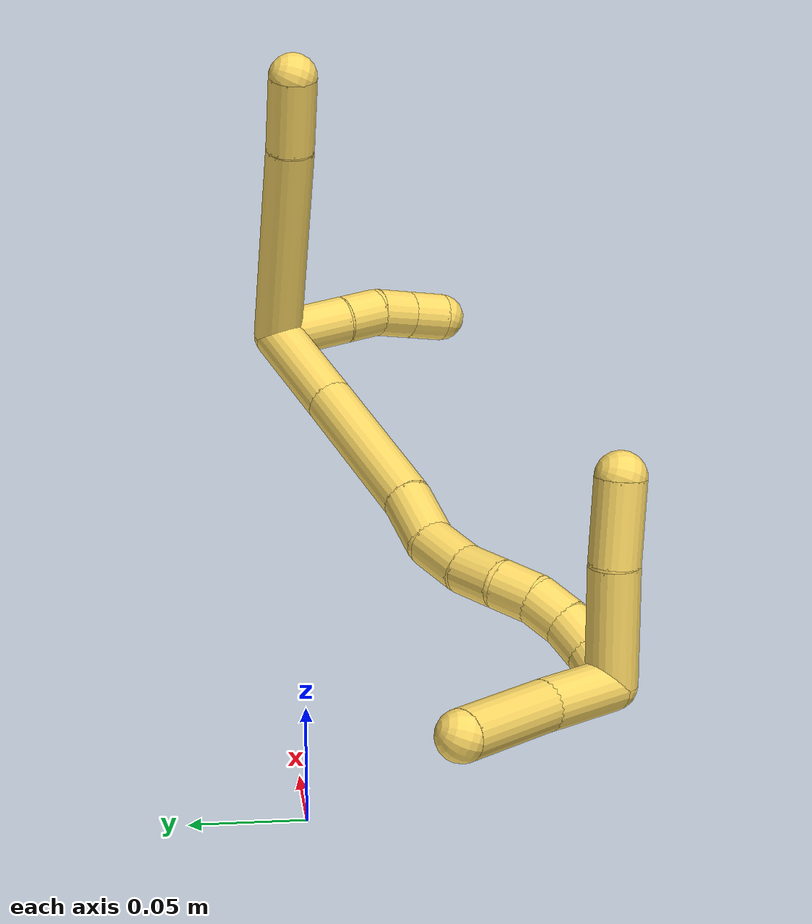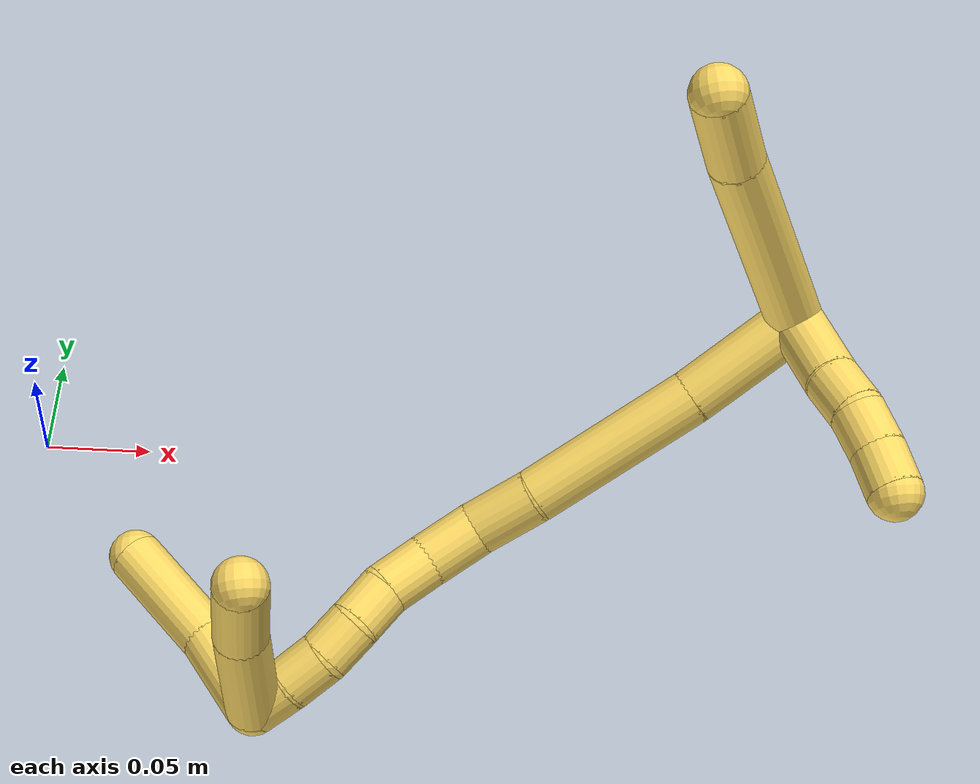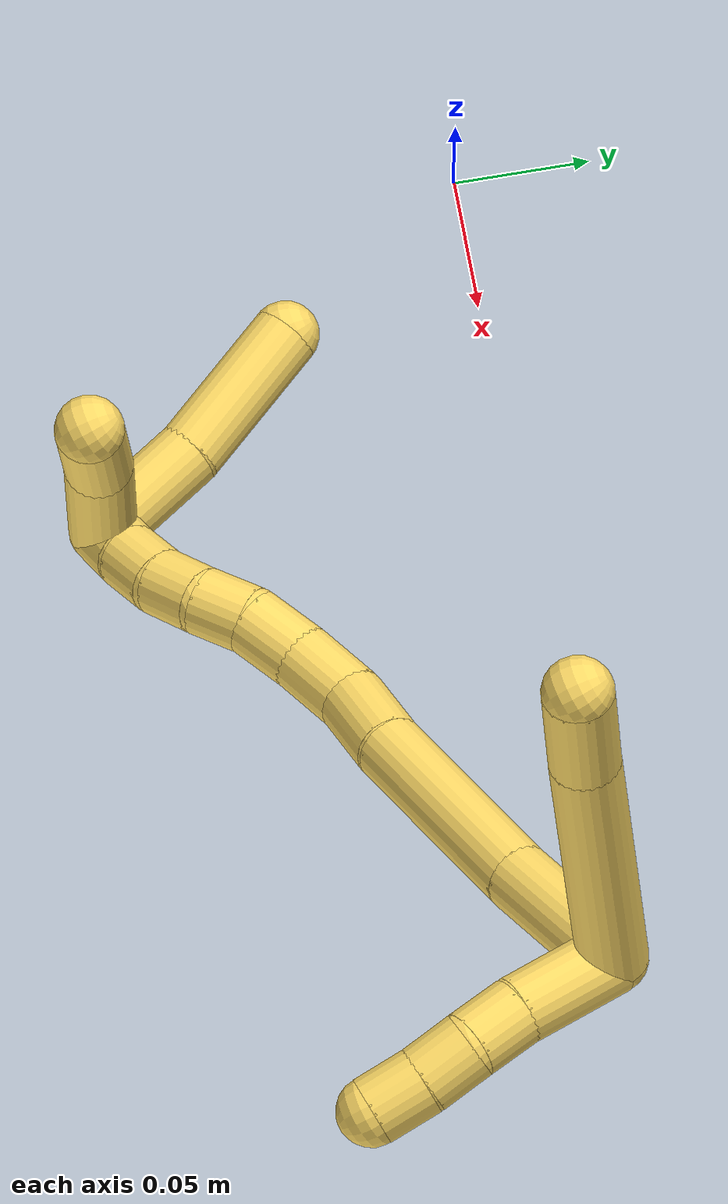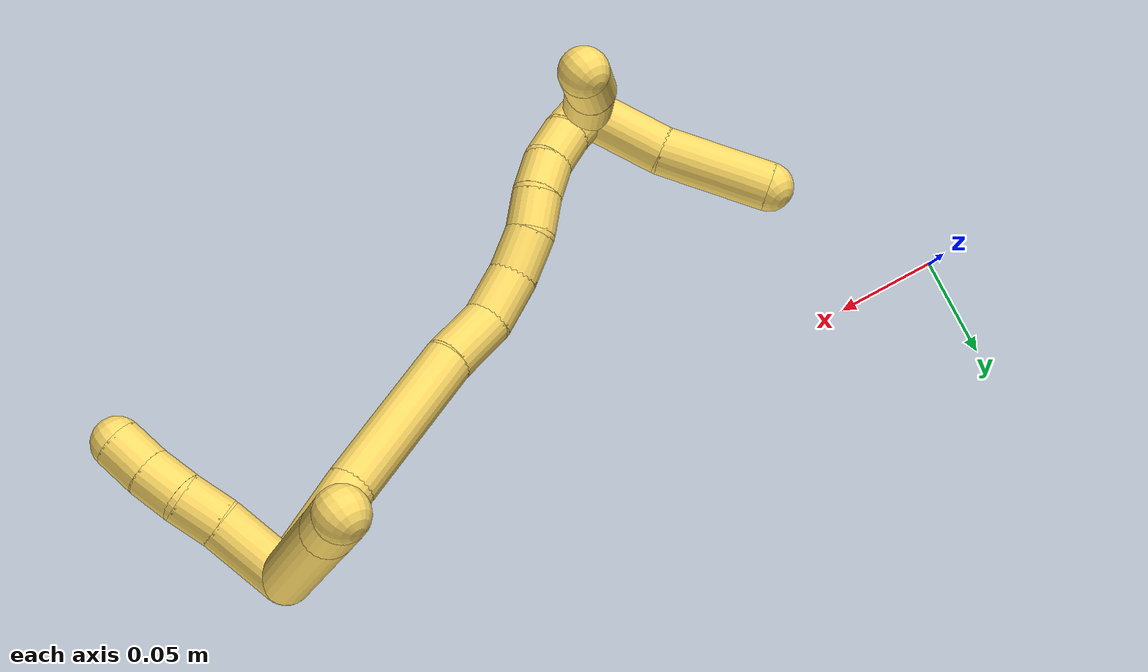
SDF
<sdf version="1.7">
 <world name="default">
  <model name="5">
   <static>0</static>
   <link name="5">
    <collision name="collision-cylinder-e_1_2_8">
     <pose>0.006683 0.05063 -0.02074 -1.95958 0.121542 -0.180861</pose>
     <geometry><cylinder><radius>0.0125</radius><length>0.11024</length></cylinder></geometry>
     <surface>
      <friction><ode><mu>1.16</mu><mu2>1.16</mu2><slip1>0</slip1><slip2>0</slip2></ode></friction>
      <contact><ode><kp>1e+06</kp><kd>1</kd><max_vel>0</max_vel><min_depth>0.001</min_depth></ode></contact>
     </surface>
    </collision>
    <visual name="visual-cylinder-e_1_2_8">
     <pose>0.006683 0.05063 -0.02074 -1.95958 0.121542 -0.180861</pose>
     <geometry><cylinder><radius>0.0125</radius><length>0.11024</length></cylinder></geometry>
     <material><ambient>1 0.858824 0.4 1</ambient></material>
    </visual>
    <collision name="collision-cylinder-e_2_8_6">
     <pose>0.016997 0.119204 -0.04923 -1.97852 0.183709 -0.278437</pose>
     <geometry><cylinder><radius>0.0125</radius><length>0.03976</length></cylinder></geometry>
     <surface>
      <friction><ode><mu>1.16</mu><mu2>1.16</mu2><slip1>0</slip1><slip2>0</slip2></ode></friction>
      <contact><ode><kp>1e+06</kp><kd>1</kd><max_vel>0</max_vel><min_depth>0.001</min_depth></ode></contact>
     </surface>
    </collision>
    <visual name="visual-cylinder-e_2_8_6">
     <pose>0.016997 0.119204 -0.04923 -1.97852 0.183709 -0.278437</pose>
     <geometry><cylinder><radius>0.0125</radius><length>0.03976</length></cylinder></geometry>
     <material><ambient>1 0.858824 0.4 1</ambient></material>
    </visual>
    <collision name="collision-cylinder-e_1_2_9">
     <pose>0.007501 0.006426 0.016707 -0.367195 0.396794 -0.074628</pose>
     <geometry><cylinder><radius>0.0125</radius><length>0.038817</length></cylinder></geometry>
     <surface>
      <friction><ode><mu>1.16</mu><mu2>1.16</mu2><slip1>0</slip1><slip2>0</slip2></ode></friction>
      <contact><ode><kp>1e+06</kp><kd>1</kd><max_vel>0</max_vel><min_depth>0.001</min_depth></ode></contact>
     </surface>
    </collision>
    <visual name="visual-cylinder-e_1_2_9">
     <pose>0.007501 0.006426 0.016707 -0.367195 0.396794 -0.074628</pose>
     <geometry><cylinder><radius>0.0125</radius><length>0.038817</length></cylinder></geometry>
     <material><ambient>1 0.858824 0.4 1</ambient></material>
    </visual>
    <collision name="collision-cylinder-e_2_9_10">
     <pose>0.019818 0.015477 0.042301 -0.287166 0.479401 -0.07064</pose>
     <geometry><cylinder><radius>0.0125</radius><length>0.020887</length></cylinder></geometry>
     <surface>
      <friction><ode><mu>1.16</mu><mu2>1.16</mu2><slip1>0</slip1><slip2>0</slip2></ode></friction>
      <contact><ode><kp>1e+06</kp><kd>1</kd><max_vel>0</max_vel><min_depth>0.001</min_depth></ode></contact>
     </surface>
    </collision>
    <visual name="visual-cylinder-e_2_9_10">
     <pose>0.019818 0.015477 0.042301 -0.287166 0.479401 -0.07064</pose>
     <geometry><cylinder><radius>0.0125</radius><length>0.020887</length></cylinder></geometry>
     <material><ambient>1 0.858824 0.4 1</ambient></material>
    </visual>
    <collision name="collision-cylinder-e_3_10_11">
     <pose>0.027727 0.018749 0.060718 -0.067809 0.313029 -0.010705</pose>
     <geometry><cylinder><radius>0.0125</radius><length>0.02008</length></cylinder></geometry>
     <surface>
      <friction><ode><mu>1.16</mu><mu2>1.16</mu2><slip1>0</slip1><slip2>0</slip2></ode></friction>
      <contact><ode><kp>1e+06</kp><kd>1</kd><max_vel>0</max_vel><min_depth>0.001</min_depth></ode></contact>
     </surface>
    </collision>
    <visual name="visual-cylinder-e_3_10_11">
     <pose>0.027727 0.018749 0.060718 -0.067809 0.313029 -0.010705</pose>
     <geometry><cylinder><radius>0.0125</radius><length>0.02008</length></cylinder></geometry>
     <material><ambient>1 0.858824 0.4 1</ambient></material>
    </visual>
    <collision name="collision-cylinder-e_4_11_5">
     <pose>0.033221 0.020669 0.079984 -0.129978 0.239898 -0.015688</pose>
     <geometry><cylinder><radius>0.0125</radius><length>0.020216</length></cylinder></geometry>
     <surface>
      <friction><ode><mu>1.16</mu><mu2>1.16</mu2><slip1>0</slip1><slip2>0</slip2></ode></friction>
      <contact><ode><kp>1e+06</kp><kd>1</kd><max_vel>0</max_vel><min_depth>0.001</min_depth></ode></contact>
     </surface>
    </collision>
    <visual name="visual-cylinder-e_4_11_5">
     <pose>0.033221 0.020669 0.079984 -0.129978 0.239898 -0.015688</pose>
     <geometry><cylinder><radius>0.0125</radius><length>0.020216</length></cylinder></geometry>
     <material><ambient>1 0.858824 0.4 1</ambient></material>
    </visual>
    <collision name="collision-cylinder-e_1_2_12">
     <pose>-0.025151 0.0032 0.01217 -0.257117 -1.10689 0.159405</pose>
     <geometry><cylinder><radius>0.0125</radius><length>0.056246</length></cylinder></geometry>
     <surface>
      <friction><ode><mu>1.16</mu><mu2>1.16</mu2><slip1>0</slip1><slip2>0</slip2></ode></friction>
      <contact><ode><kp>1e+06</kp><kd>1</kd><max_vel>0</max_vel><min_depth>0.001</min_depth></ode></contact>
     </surface>
    </collision>
    <visual name="visual-cylinder-e_1_2_12">
     <pose>-0.025151 0.0032 0.01217 -0.257117 -1.10689 0.159405</pose>
     <geometry><cylinder><radius>0.0125</radius><length>0.056246</length></cylinder></geometry>
     <material><ambient>1 0.858824 0.4 1</ambient></material>
    </visual>
    <collision name="collision-cylinder-e_2_12_13">
     <pose>-0.08789 0.012635 0.039963 -0.379718 -1.14999 0.247797</pose>
     <geometry><cylinder><radius>0.0125</radius><length>0.082363</length></cylinder></geometry>
     <surface>
      <friction><ode><mu>1.16</mu><mu2>1.16</mu2><slip1>0</slip1><slip2>0</slip2></ode></friction>
      <contact><ode><kp>1e+06</kp><kd>1</kd><max_vel>0</max_vel><min_depth>0.001</min_depth></ode></contact>
     </surface>
    </collision>
    <visual name="visual-cylinder-e_2_12_13">
     <pose>-0.08789 0.012635 0.039963 -0.379718 -1.14999 0.247797</pose>
     <geometry><cylinder><radius>0.0125</radius><length>0.082363</length></cylinder></geometry>
     <material><ambient>1 0.858824 0.4 1</ambient></material>
    </visual>
    <collision name="collision-cylinder-e_3_13_14">
     <pose>-0.14013 0.019719 0.060186 -0.182542 -1.26186 0.133527</pose>
     <geometry><cylinder><radius>0.0125</radius><length>0.030759</length></cylinder></geometry>
     <surface>
      <friction><ode><mu>1.16</mu><mu2>1.16</mu2><slip1>0</slip1><slip2>0</slip2></ode></friction>
      <contact><ode><kp>1e+06</kp><kd>1</kd><max_vel>0</max_vel><min_depth>0.001</min_depth></ode></contact>
     </surface>
    </collision>
    <visual name="visual-cylinder-e_3_13_14">
     <pose>-0.14013 0.019719 0.060186 -0.182542 -1.26186 0.133527</pose>
     <geometry><cylinder><radius>0.0125</radius><length>0.030759</length></cylinder></geometry>
     <material><ambient>1 0.858824 0.4 1</ambient></material>
    </visual>
    <collision name="collision-cylinder-e_4_14_15">
     <pose>-0.16599 0.024922 0.070683 -0.635781 -0.991527 0.352223</pose>
     <geometry><cylinder><radius>0.0125</radius><length>0.026785</length></cylinder></geometry>
     <surface>
      <friction><ode><mu>1.16</mu><mu2>1.16</mu2><slip1>0</slip1><slip2>0</slip2></ode></friction>
      <contact><ode><kp>1e+06</kp><kd>1</kd><max_vel>0</max_vel><min_depth>0.001</min_depth></ode></contact>
     </surface>
    </collision>
    <visual name="visual-cylinder-e_4_14_15">
     <pose>-0.16599 0.024922 0.070683 -0.635781 -0.991527 0.352223</pose>
     <geometry><cylinder><radius>0.0125</radius><length>0.026785</length></cylinder></geometry>
     <material><ambient>1 0.858824 0.4 1</ambient></material>
    </visual>
    <collision name="collision-cylinder-e_5_15_16">
     <pose>-0.18572 0.034925 0.08228 -0.781166 -0.815452 0.352003</pose>
     <geometry><cylinder><radius>0.0125</radius><length>0.023411</length></cylinder></geometry>
     <surface>
      <friction><ode><mu>1.16</mu><mu2>1.16</mu2><slip1>0</slip1><slip2>0</slip2></ode></friction>
      <contact><ode><kp>1e+06</kp><kd>1</kd><max_vel>0</max_vel><min_depth>0.001</min_depth></ode></contact>
     </surface>
    </collision>
    <visual name="visual-cylinder-e_5_15_16">
     <pose>-0.18572 0.034925 0.08228 -0.781166 -0.815452 0.352003</pose>
     <geometry><cylinder><radius>0.0125</radius><length>0.023411</length></cylinder></geometry>
     <material><ambient>1 0.858824 0.4 1</ambient></material>
    </visual>
    <collision name="collision-cylinder-e_6_16_17">
     <pose>-0.200601 0.044516 0.09479 -0.524481 -0.679676 0.189237</pose>
     <geometry><cylinder><radius>0.0125</radius><length>0.020235</length></cylinder></geometry>
     <surface>
      <friction><ode><mu>1.16</mu><mu2>1.16</mu2><slip1>0</slip1><slip2>0</slip2></ode></friction>
      <contact><ode><kp>1e+06</kp><kd>1</kd><max_vel>0</max_vel><min_depth>0.001</min_depth></ode></contact>
     </surface>
    </collision>
    <visual name="visual-cylinder-e_6_16_17">
     <pose>-0.200601 0.044516 0.09479 -0.524481 -0.679676 0.189237</pose>
     <geometry><cylinder><radius>0.0125</radius><length>0.020235</length></cylinder></geometry>
     <material><ambient>1 0.858824 0.4 1</ambient></material>
    </visual>
    <collision name="collision-cylinder-e_7_17_18">
     <pose>-0.214499 0.050461 0.107875 -0.309259 -0.852767 0.141376</pose>
     <geometry><cylinder><radius>0.0125</radius><length>0.020021</length></cylinder></geometry>
     <surface>
      <friction><ode><mu>1.16</mu><mu2>1.16</mu2><slip1>0</slip1><slip2>0</slip2></ode></friction>
      <contact><ode><kp>1e+06</kp><kd>1</kd><max_vel>0</max_vel><min_depth>0.001</min_depth></ode></contact>
     </surface>
    </collision>
    <visual name="visual-cylinder-e_7_17_18">
     <pose>-0.214499 0.050461 0.107875 -0.309259 -0.852767 0.141376</pose>
     <geometry><cylinder><radius>0.0125</radius><length>0.020021</length></cylinder></geometry>
     <material><ambient>1 0.858824 0.4 1</ambient></material>
    </visual>
    <collision name="collision-cylinder-e_8_18_19">
     <pose>-0.230907 0.053627 0.118764 -0.246555 -1.07827 0.147983</pose>
     <geometry><cylinder><radius>0.0125</radius><length>0.020129</length></cylinder></geometry>
     <surface>
      <friction><ode><mu>1.16</mu><mu2>1.16</mu2><slip1>0</slip1><slip2>0</slip2></ode></friction>
      <contact><ode><kp>1e+06</kp><kd>1</kd><max_vel>0</max_vel><min_depth>0.001</min_depth></ode></contact>
     </surface>
    </collision>
    <visual name="visual-cylinder-e_8_18_19">
     <pose>-0.230907 0.053627 0.118764 -0.246555 -1.07827 0.147983</pose>
     <geometry><cylinder><radius>0.0125</radius><length>0.020129</length></cylinder></geometry>
     <material><ambient>1 0.858824 0.4 1</ambient></material>
    </visual>
    <collision name="collision-cylinder-e_9_19_1">
     <pose>-0.249072 0.055007 0.127124 -0.058257 -1.18723 0.039318</pose>
     <geometry><cylinder><radius>0.0125</radius><length>0.02005</length></cylinder></geometry>
     <surface>
      <friction><ode><mu>1.16</mu><mu2>1.16</mu2><slip1>0</slip1><slip2>0</slip2></ode></friction>
      <contact><ode><kp>1e+06</kp><kd>1</kd><max_vel>0</max_vel><min_depth>0.001</min_depth></ode></contact>
     </surface>
    </collision>
    <visual name="visual-cylinder-e_9_19_1">
     <pose>-0.249072 0.055007 0.127124 -0.058257 -1.18723 0.039318</pose>
     <geometry><cylinder><radius>0.0125</radius><length>0.02005</length></cylinder></geometry>
     <material><ambient>1 0.858824 0.4 1</ambient></material>
    </visual>
    <collision name="collision-cylinder-e_1_1_20">
     <pose>-0.269444 0.052334 0.112704 2.98374 -0.541991 -2.58691</pose>
     <geometry><cylinder><radius>0.0125</radius><length>0.042943</length></cylinder></geometry>
     <surface>
      <friction><ode><mu>1.16</mu><mu2>1.16</mu2><slip1>0</slip1><slip2>0</slip2></ode></friction>
      <contact><ode><kp>1e+06</kp><kd>1</kd><max_vel>0</max_vel><min_depth>0.001</min_depth></ode></contact>
     </surface>
    </collision>
    <visual name="visual-cylinder-e_1_1_20">
     <pose>-0.269444 0.052334 0.112704 2.98374 -0.541991 -2.58691</pose>
     <geometry><cylinder><radius>0.0125</radius><length>0.042943</length></cylinder></geometry>
     <material><ambient>1 0.858824 0.4 1</ambient></material>
    </visual>
    <collision name="collision-cylinder-e_2_20_4">
     <pose>-0.297623 0.048929 0.07171 3.11912 -0.642867 -3.07413</pose>
     <geometry><cylinder><radius>0.0125</radius><length>0.057057</length></cylinder></geometry>
     <surface>
      <friction><ode><mu>1.16</mu><mu2>1.16</mu2><slip1>0</slip1><slip2>0</slip2></ode></friction>
      <contact><ode><kp>1e+06</kp><kd>1</kd><max_vel>0</max_vel><min_depth>0.001</min_depth></ode></contact>
     </surface>
    </collision>
    <visual name="visual-cylinder-e_2_20_4">
     <pose>-0.297623 0.048929 0.07171 3.11912 -0.642867 -3.07413</pose>
     <geometry><cylinder><radius>0.0125</radius><length>0.057057</length></cylinder></geometry>
     <material><ambient>1 0.858824 0.4 1</ambient></material>
    </visual>
    <collision name="collision-cylinder-e_1_1_21">
     <pose>-0.246526 0.079479 0.119494 -2.00935 0.416227 -0.641615</pose>
     <geometry><cylinder><radius>0.0125</radius><length>0.058579</length></cylinder></geometry>
     <surface>
      <friction><ode><mu>1.16</mu><mu2>1.16</mu2><slip1>0</slip1><slip2>0</slip2></ode></friction>
      <contact><ode><kp>1e+06</kp><kd>1</kd><max_vel>0</max_vel><min_depth>0.001</min_depth></ode></contact>
     </surface>
    </collision>
    <visual name="visual-cylinder-e_1_1_21">
     <pose>-0.246526 0.079479 0.119494 -2.00935 0.416227 -0.641615</pose>
     <geometry><cylinder><radius>0.0125</radius><length>0.058579</length></cylinder></geometry>
     <material><ambient>1 0.858824 0.4 1</ambient></material>
    </visual>
    <collision name="collision-cylinder-e_2_21_3">
     <pose>-0.22451 0.120589 0.101693 -1.93504 0.51351 -0.728183</pose>
     <geometry><cylinder><radius>0.0125</radius><length>0.041421</length></cylinder></geometry>
     <surface>
      <friction><ode><mu>1.16</mu><mu2>1.16</mu2><slip1>0</slip1><slip2>0</slip2></ode></friction>
      <contact><ode><kp>1e+06</kp><kd>1</kd><max_vel>0</max_vel><min_depth>0.001</min_depth></ode></contact>
     </surface>
    </collision>
    <visual name="visual-cylinder-e_2_21_3">
     <pose>-0.22451 0.120589 0.101693 -1.93504 0.51351 -0.728183</pose>
     <geometry><cylinder><radius>0.0125</radius><length>0.041421</length></cylinder></geometry>
     <material><ambient>1 0.858824 0.4 1</ambient></material>
    </visual>
    <collision name="collision-sphere-3">
     <pose>-0.214336 0.137445 0.095266 0 -0 0</pose>
     <geometry><sphere><radius>0.0125</radius></sphere></geometry>
     <surface>
      <friction><ode><mu>1.16</mu><mu2>1.16</mu2><slip1>0</slip1><slip2>0</slip2></ode></friction>
      <contact><ode><kp>1e+06</kp><kd>1</kd><max_vel>0</max_vel><min_depth>0.001</min_depth></ode></contact>
     </surface>
    </collision>
    <visual name="visual-sphere-3">
     <pose>-0.214336 0.137445 0.095266 0 -0 0</pose>
     <geometry><sphere><radius>0.0125</radius></sphere></geometry>
     <material><ambient>1 0.858824 0.4 1</ambient></material>
    </visual>
    <collision name="collision-sphere-21">
     <pose>-0.234684 0.103733 0.108119 0 -0 0</pose>
     <geometry><sphere><radius>0.0125</radius></sphere></geometry>
     <surface>
      <friction><ode><mu>1.16</mu><mu2>1.16</mu2><slip1>0</slip1><slip2>0</slip2></ode></friction>
      <contact><ode><kp>1e+06</kp><kd>1</kd><max_vel>0</max_vel><min_depth>0.001</min_depth></ode></contact>
     </surface>
    </collision>
    <visual name="visual-sphere-21">
     <pose>-0.234684 0.103733 0.108119 0 -0 0</pose>
     <geometry><sphere><radius>0.0125</radius></sphere></geometry>
     <material><ambient>1 0.858824 0.4 1</ambient></material>
    </visual>
    <collision name="collision-sphere-4">
     <pose>-0.314725 0.048416 0.048883 0 -0 0</pose>
     <geometry><sphere><radius>0.0125</radius></sphere></geometry>
     <surface>
      <friction><ode><mu>1.16</mu><mu2>1.16</mu2><slip1>0</slip1><slip2>0</slip2></ode></friction>
      <contact><ode><kp>1e+06</kp><kd>1</kd><max_vel>0</max_vel><min_depth>0.001</min_depth></ode></contact>
     </surface>
    </collision>
    <visual name="visual-sphere-4">
     <pose>-0.314725 0.048416 0.048883 0 -0 0</pose>
     <geometry><sphere><radius>0.0125</radius></sphere></geometry>
     <material><ambient>1 0.858824 0.4 1</ambient></material>
    </visual>
    <collision name="collision-sphere-20">
     <pose>-0.28052 0.049442 0.094538 0 -0 0</pose>
     <geometry><sphere><radius>0.0125</radius></sphere></geometry>
     <surface>
      <friction><ode><mu>1.16</mu><mu2>1.16</mu2><slip1>0</slip1><slip2>0</slip2></ode></friction>
      <contact><ode><kp>1e+06</kp><kd>1</kd><max_vel>0</max_vel><min_depth>0.001</min_depth></ode></contact>
     </surface>
    </collision>
    <visual name="visual-sphere-20">
     <pose>-0.28052 0.049442 0.094538 0 -0 0</pose>
     <geometry><sphere><radius>0.0125</radius></sphere></geometry>
     <material><ambient>1 0.858824 0.4 1</ambient></material>
    </visual>
    <collision name="collision-sphere-11">
     <pose>0.030819 0.019396 0.070248 0 -0 0</pose>
     <geometry><sphere><radius>0.0125</radius></sphere></geometry>
     <surface>
      <friction><ode><mu>1.16</mu><mu2>1.16</mu2><slip1>0</slip1><slip2>0</slip2></ode></friction>
      <contact><ode><kp>1e+06</kp><kd>1</kd><max_vel>0</max_vel><min_depth>0.001</min_depth></ode></contact>
     </surface>
    </collision>
    <visual name="visual-sphere-11">
     <pose>0.030819 0.019396 0.070248 0 -0 0</pose>
     <geometry><sphere><radius>0.0125</radius></sphere></geometry>
     <material><ambient>1 0.858824 0.4 1</ambient></material>
    </visual>
    <collision name="collision-sphere-10">
     <pose>0.024635 0.018102 0.051188 0 -0 0</pose>
     <geometry><sphere><radius>0.0125</radius></sphere></geometry>
     <surface>
      <friction><ode><mu>1.16</mu><mu2>1.16</mu2><slip1>0</slip1><slip2>0</slip2></ode></friction>
      <contact><ode><kp>1e+06</kp><kd>1</kd><max_vel>0</max_vel><min_depth>0.001</min_depth></ode></contact>
     </surface>
    </collision>
    <visual name="visual-sphere-10">
     <pose>0.024635 0.018102 0.051188 0 -0 0</pose>
     <geometry><sphere><radius>0.0125</radius></sphere></geometry>
     <material><ambient>1 0.858824 0.4 1</ambient></material>
    </visual>
    <collision name="collision-sphere-6">
     <pose>0.020629 0.137147 -0.05698 0 -0 0</pose>
     <geometry><sphere><radius>0.0125</radius></sphere></geometry>
     <surface>
      <friction><ode><mu>1.16</mu><mu2>1.16</mu2><slip1>0</slip1><slip2>0</slip2></ode></friction>
      <contact><ode><kp>1e+06</kp><kd>1</kd><max_vel>0</max_vel><min_depth>0.001</min_depth></ode></contact>
     </surface>
    </collision>
    <visual name="visual-sphere-6">
     <pose>0.020629 0.137147 -0.05698 0 -0 0</pose>
     <geometry><sphere><radius>0.0125</radius></sphere></geometry>
     <material><ambient>1 0.858824 0.4 1</ambient></material>
    </visual>
    <collision name="collision-sphere-9">
     <pose>0.015001 0.012852 0.033414 0 -0 0</pose>
     <geometry><sphere><radius>0.0125</radius></sphere></geometry>
     <surface>
      <friction><ode><mu>1.16</mu><mu2>1.16</mu2><slip1>0</slip1><slip2>0</slip2></ode></friction>
      <contact><ode><kp>1e+06</kp><kd>1</kd><max_vel>0</max_vel><min_depth>0.001</min_depth></ode></contact>
     </surface>
    </collision>
    <visual name="visual-sphere-9">
     <pose>0.015001 0.012852 0.033414 0 -0 0</pose>
     <geometry><sphere><radius>0.0125</radius></sphere></geometry>
     <material><ambient>1 0.858824 0.4 1</ambient></material>
    </visual>
    <collision name="collision-sphere-2">
     <geometry><sphere><radius>0.0125</radius></sphere></geometry>
     <surface>
      <friction><ode><mu>1.16</mu><mu2>1.16</mu2><slip1>0</slip1><slip2>0</slip2></ode></friction>
      <contact><ode><kp>1e+06</kp><kd>1</kd><max_vel>0</max_vel><min_depth>0.001</min_depth></ode></contact>
     </surface>
    </collision>
    <visual name="visual-sphere-2">
     <geometry><sphere><radius>0.0125</radius></sphere></geometry>
     <material><ambient>1 0.858824 0.4 1</ambient></material>
    </visual>
    <collision name="collision-sphere-19">
     <pose>-0.239775 0.054789 0.123379 0 -0 0</pose>
     <geometry><sphere><radius>0.0125</radius></sphere></geometry>
     <surface>
      <friction><ode><mu>1.16</mu><mu2>1.16</mu2><slip1>0</slip1><slip2>0</slip2></ode></friction>
      <contact><ode><kp>1e+06</kp><kd>1</kd><max_vel>0</max_vel><min_depth>0.001</min_depth></ode></contact>
     </surface>
    </collision>
    <visual name="visual-sphere-19">
     <pose>-0.239775 0.054789 0.123379 0 -0 0</pose>
     <geometry><sphere><radius>0.0125</radius></sphere></geometry>
     <material><ambient>1 0.858824 0.4 1</ambient></material>
    </visual>
    <collision name="collision-sphere-8">
     <pose>0.013366 0.10126 -0.04148 0 -0 0</pose>
     <geometry><sphere><radius>0.0125</radius></sphere></geometry>
     <surface>
      <friction><ode><mu>1.16</mu><mu2>1.16</mu2><slip1>0</slip1><slip2>0</slip2></ode></friction>
      <contact><ode><kp>1e+06</kp><kd>1</kd><max_vel>0</max_vel><min_depth>0.001</min_depth></ode></contact>
     </surface>
    </collision>
    <visual name="visual-sphere-8">
     <pose>0.013366 0.10126 -0.04148 0 -0 0</pose>
     <geometry><sphere><radius>0.0125</radius></sphere></geometry>
     <material><ambient>1 0.858824 0.4 1</ambient></material>
    </visual>
    <collision name="collision-sphere-5">
     <pose>0.035622 0.021941 0.08972 0 -0 0</pose>
     <geometry><sphere><radius>0.0125</radius></sphere></geometry>
     <surface>
      <friction><ode><mu>1.16</mu><mu2>1.16</mu2><slip1>0</slip1><slip2>0</slip2></ode></friction>
      <contact><ode><kp>1e+06</kp><kd>1</kd><max_vel>0</max_vel><min_depth>0.001</min_depth></ode></contact>
     </surface>
    </collision>
    <visual name="visual-sphere-5">
     <pose>0.035622 0.021941 0.08972 0 -0 0</pose>
     <geometry><sphere><radius>0.0125</radius></sphere></geometry>
     <material><ambient>1 0.858824 0.4 1</ambient></material>
    </visual>
    <collision name="collision-sphere-12">
     <pose>-0.050302 0.0064 0.024339 0 -0 0</pose>
     <geometry><sphere><radius>0.0125</radius></sphere></geometry>
     <surface>
      <friction><ode><mu>1.16</mu><mu2>1.16</mu2><slip1>0</slip1><slip2>0</slip2></ode></friction>
      <contact><ode><kp>1e+06</kp><kd>1</kd><max_vel>0</max_vel><min_depth>0.001</min_depth></ode></contact>
     </surface>
    </collision>
    <visual name="visual-sphere-12">
     <pose>-0.050302 0.0064 0.024339 0 -0 0</pose>
     <geometry><sphere><radius>0.0125</radius></sphere></geometry>
     <material><ambient>1 0.858824 0.4 1</ambient></material>
    </visual>
    <collision name="collision-sphere-13">
     <pose>-0.125479 0.01887 0.055588 0 -0 0</pose>
     <geometry><sphere><radius>0.0125</radius></sphere></geometry>
     <surface>
      <friction><ode><mu>1.16</mu><mu2>1.16</mu2><slip1>0</slip1><slip2>0</slip2></ode></friction>
      <contact><ode><kp>1e+06</kp><kd>1</kd><max_vel>0</max_vel><min_depth>0.001</min_depth></ode></contact>
     </surface>
    </collision>
    <visual name="visual-sphere-13">
     <pose>-0.125479 0.01887 0.055588 0 -0 0</pose>
     <geometry><sphere><radius>0.0125</radius></sphere></geometry>
     <material><ambient>1 0.858824 0.4 1</ambient></material>
    </visual>
    <collision name="collision-sphere-14">
     <pose>-0.154782 0.020568 0.064784 0 -0 0</pose>
     <geometry><sphere><radius>0.0125</radius></sphere></geometry>
     <surface>
      <friction><ode><mu>1.16</mu><mu2>1.16</mu2><slip1>0</slip1><slip2>0</slip2></ode></friction>
      <contact><ode><kp>1e+06</kp><kd>1</kd><max_vel>0</max_vel><min_depth>0.001</min_depth></ode></contact>
     </surface>
    </collision>
    <visual name="visual-sphere-14">
     <pose>-0.154782 0.020568 0.064784 0 -0 0</pose>
     <geometry><sphere><radius>0.0125</radius></sphere></geometry>
     <material><ambient>1 0.858824 0.4 1</ambient></material>
    </visual>
    <collision name="collision-sphere-15">
     <pose>-0.177198 0.029275 0.076582 0 -0 0</pose>
     <geometry><sphere><radius>0.0125</radius></sphere></geometry>
     <surface>
      <friction><ode><mu>1.16</mu><mu2>1.16</mu2><slip1>0</slip1><slip2>0</slip2></ode></friction>
      <contact><ode><kp>1e+06</kp><kd>1</kd><max_vel>0</max_vel><min_depth>0.001</min_depth></ode></contact>
     </surface>
    </collision>
    <visual name="visual-sphere-15">
     <pose>-0.177198 0.029275 0.076582 0 -0 0</pose>
     <geometry><sphere><radius>0.0125</radius></sphere></geometry>
     <material><ambient>1 0.858824 0.4 1</ambient></material>
    </visual>
    <collision name="collision-sphere-16">
     <pose>-0.194242 0.040575 0.087979 0 -0 0</pose>
     <geometry><sphere><radius>0.0125</radius></sphere></geometry>
     <surface>
      <friction><ode><mu>1.16</mu><mu2>1.16</mu2><slip1>0</slip1><slip2>0</slip2></ode></friction>
      <contact><ode><kp>1e+06</kp><kd>1</kd><max_vel>0</max_vel><min_depth>0.001</min_depth></ode></contact>
     </surface>
    </collision>
    <visual name="visual-sphere-16">
     <pose>-0.194242 0.040575 0.087979 0 -0 0</pose>
     <geometry><sphere><radius>0.0125</radius></sphere></geometry>
     <material><ambient>1 0.858824 0.4 1</ambient></material>
    </visual>
    <collision name="collision-sphere-17">
     <pose>-0.20696 0.048457 0.101601 0 -0 0</pose>
     <geometry><sphere><radius>0.0125</radius></sphere></geometry>
     <surface>
      <friction><ode><mu>1.16</mu><mu2>1.16</mu2><slip1>0</slip1><slip2>0</slip2></ode></friction>
      <contact><ode><kp>1e+06</kp><kd>1</kd><max_vel>0</max_vel><min_depth>0.001</min_depth></ode></contact>
     </surface>
    </collision>
    <visual name="visual-sphere-17">
     <pose>-0.20696 0.048457 0.101601 0 -0 0</pose>
     <geometry><sphere><radius>0.0125</radius></sphere></geometry>
     <material><ambient>1 0.858824 0.4 1</ambient></material>
    </visual>
    <collision name="collision-sphere-18">
     <pose>-0.222038 0.052465 0.114148 0 -0 0</pose>
     <geometry><sphere><radius>0.0125</radius></sphere></geometry>
     <surface>
      <friction><ode><mu>1.16</mu><mu2>1.16</mu2><slip1>0</slip1><slip2>0</slip2></ode></friction>
      <contact><ode><kp>1e+06</kp><kd>1</kd><max_vel>0</max_vel><min_depth>0.001</min_depth></ode></contact>
     </surface>
    </collision>
    <visual name="visual-sphere-18">
     <pose>-0.222038 0.052465 0.114148 0 -0 0</pose>
     <geometry><sphere><radius>0.0125</radius></sphere></geometry>
     <material><ambient>1 0.858824 0.4 1</ambient></material>
    </visual>
    <collision name="collision-sphere-1">
     <pose>-0.258368 0.055225 0.13087 0 -0 0</pose>
     <geometry><sphere><radius>0.0125</radius></sphere></geometry>
     <surface>
      <friction><ode><mu>1.16</mu><mu2>1.16</mu2><slip1>0</slip1><slip2>0</slip2></ode></friction>
      <contact><ode><kp>1e+06</kp><kd>1</kd><max_vel>0</max_vel><min_depth>0.001</min_depth></ode></contact>
     </surface>
    </collision>
    <visual name="visual-sphere-1">
     <pose>-0.258368 0.055225 0.13087 0 -0 0</pose>
     <geometry><sphere><radius>0.0125</radius></sphere></geometry>
     <material><ambient>1 0.858824 0.4 1</ambient></material>
    </visual>
    <inertial>
     <pose>-0.118267 0.045045 0.05191 0 -0 0</pose>
     <mass>0.75</mass>
     <inertia>
      <ixx>0.000111</ixx>
      <ixy>0</ixy>
      <ixz>0</ixz>
      <iyy>5.7e-05</iyy>
      <iyz>0</iyz>
      <izz>-8.8e-05</izz>
     </inertia>
    </inertial>
   </link>
   <pose>0.348787 -0.008347 0.128966 2.01204 -0.444543 -0.004289</pose>
  </model>
 </world>
</sdf>
